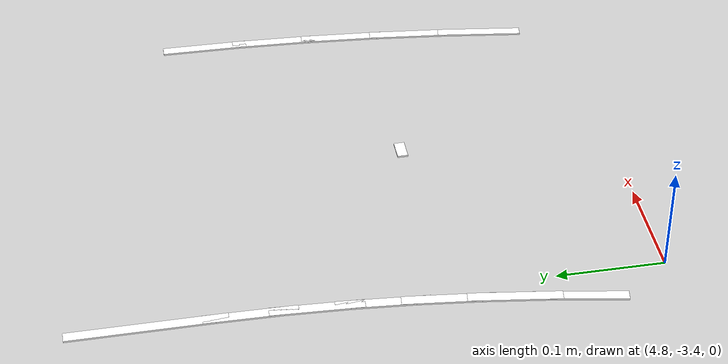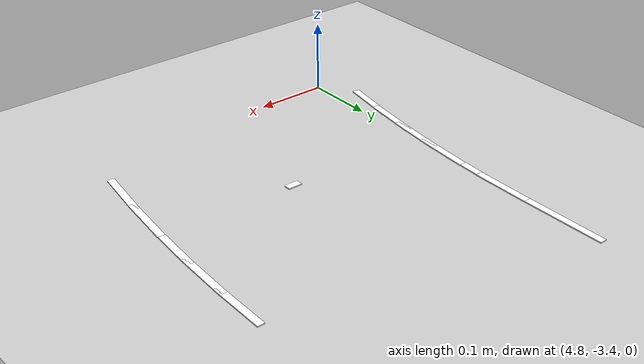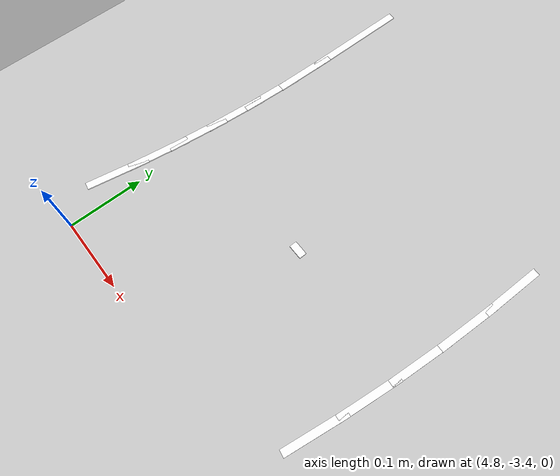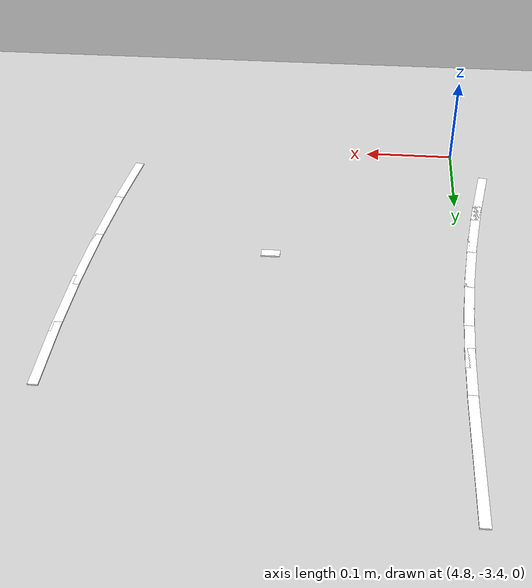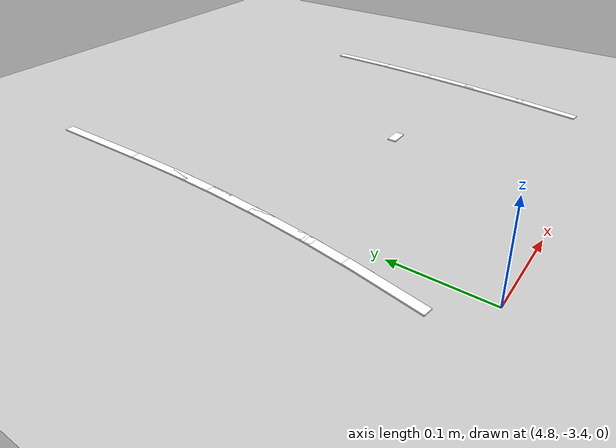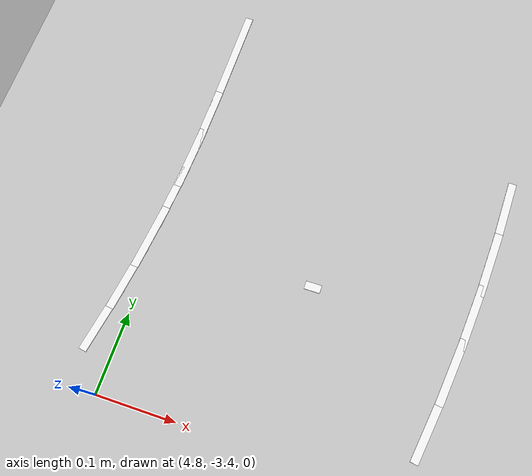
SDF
<sdf version="1.7">
 <world name="default">
  <model name="ground_plane">
   <static>1</static>
   <link name="link">
    <collision name="collision">
     <geometry><plane><normal>0 0 1</normal><size>100 100</size></plane></geometry>
     <surface>
      <contact><collide_bitmask>65535</collide_bitmask></contact>
      <friction><ode><mu>100</mu><mu2>50</mu2></ode></friction>
     </surface>
    </collision>
    <visual name="visual">
     <cast_shadows>0</cast_shadows>
     <geometry><plane><normal>0 0 1</normal><size>100 100</size></plane></geometry>
     <material>
      <script><uri>file://media/materials/scripts/gazebo.material</uri><name>Gazebo/Grey</name></script>
     </material>
    </visual>
   </link>
  </model>
  <model name="lane_line_left_93">
   <static>1</static>
   <link name="link">
    <pose>0 0 -0.004 0 -0 0</pose>
    <visual name="visual">
     <geometry><box><size>0.0841 0.01 0.01</size></box></geometry>
     <material><ambient>1 1 1 1</ambient><diffuse>1 1 1 1</diffuse></material>
    </visual>
    <collision name="collision"><geometry><box><size>0.0841 0.01 0.01</size></box></geometry></collision>
   </link>
   <pose>4.77184 -3.31568 0 0 -0 1.39448</pose>
  </model>
  <model name="lane_line_left_94">
   <static>1</static>
   <link name="link">
    <pose>0 0 -0.004 0 -0 0</pose>
    <visual name="visual">
     <geometry><box><size>0.0841 0.01 0.01</size></box></geometry>
     <material><ambient>1 1 1 1</ambient><diffuse>1 1 1 1</diffuse></material>
    </visual>
    <collision name="collision"><geometry><box><size>0.0841 0.01 0.01</size></box></geometry></collision>
   </link>
   <pose>4.78105 -3.25873 0 0 -0 1.42654</pose>
  </model>
  <model name="lane_line_right_94">
   <static>1</static>
   <link name="link">
    <pose>0 0 -0.004 0 -0 0</pose>
    <visual name="visual">
     <geometry><box><size>0.0841 0.01 0.01</size></box></geometry>
     <material><ambient>1 1 1 1</ambient><diffuse>1 1 1 1</diffuse></material>
    </visual>
    <collision name="collision"><geometry><box><size>0.0841 0.01 0.01</size></box></geometry></collision>
   </link>
   <pose>5.17689 -3.31623 0 0 -0 1.42654</pose>
  </model>
  <model name="lane_line_left_95">
   <static>1</static>
   <link name="link">
    <pose>0 0 -0.004 0 -0 0</pose>
    <visual name="visual">
     <geometry><box><size>0.0841 0.01 0.01</size></box></geometry>
     <material><ambient>1 1 1 1</ambient><diffuse>1 1 1 1</diffuse></material>
    </visual>
    <collision name="collision"><geometry><box><size>0.0841 0.01 0.01</size></box></geometry></collision>
   </link>
   <pose>4.78843 -3.20151 0 0 -0 1.4586</pose>
  </model>
  <model name="lane_line_right_95">
   <static>1</static>
   <link name="link">
    <pose>0 0 -0.004 0 -0 0</pose>
    <visual name="visual">
     <geometry><box><size>0.0841 0.01 0.01</size></box></geometry>
     <material><ambient>1 1 1 1</ambient><diffuse>1 1 1 1</diffuse></material>
    </visual>
    <collision name="collision"><geometry><box><size>0.0841 0.01 0.01</size></box></geometry></collision>
   </link>
   <pose>5.18591 -3.24629 0 0 -0 1.4586</pose>
  </model>
  <model name="lane_line_left_96">
   <static>1</static>
   <link name="link">
    <pose>0 0 -0.004 0 -0 0</pose>
    <visual name="visual">
     <geometry><box><size>0.0841 0.01 0.01</size></box></geometry>
     <material><ambient>1 1 1 1</ambient><diffuse>1 1 1 1</diffuse></material>
    </visual>
    <collision name="collision"><geometry><box><size>0.0841 0.01 0.01</size></box></geometry></collision>
   </link>
   <pose>4.79397 -3.14408 0 0 -0 1.49065</pose>
  </model>
  <model name="lane_line_right_96">
   <static>1</static>
   <link name="link">
    <pose>0 0 -0.004 0 -0 0</pose>
    <visual name="visual">
     <geometry><box><size>0.0841 0.01 0.01</size></box></geometry>
     <material><ambient>1 1 1 1</ambient><diffuse>1 1 1 1</diffuse></material>
    </visual>
    <collision name="collision"><geometry><box><size>0.0841 0.01 0.01</size></box></geometry></collision>
   </link>
   <pose>5.19268 -3.1761 0 0 -0 1.49065</pose>
  </model>
  <model name="lane_line_left_97">
   <static>1</static>
   <link name="link">
    <pose>0 0 -0.004 0 -0 0</pose>
    <visual name="visual">
     <geometry><box><size>0.0841 0.01 0.01</size></box></geometry>
     <material><ambient>1 1 1 1</ambient><diffuse>1 1 1 1</diffuse></material>
    </visual>
    <collision name="collision"><geometry><box><size>0.0841 0.01 0.01</size></box></geometry></collision>
   </link>
   <pose>4.79766 -3.08651 0 0 -0 1.52271</pose>
  </model>
  <model name="lane_line_right_97">
   <static>1</static>
   <link name="link">
    <pose>0 0 -0.004 0 -0 0</pose>
    <visual name="visual">
     <geometry><box><size>0.0841 0.01 0.01</size></box></geometry>
     <material><ambient>1 1 1 1</ambient><diffuse>1 1 1 1</diffuse></material>
    </visual>
    <collision name="collision"><geometry><box><size>0.0841 0.01 0.01</size></box></geometry></collision>
   </link>
   <pose>5.1972 -3.10574 0 0 -0 1.52271</pose>
  </model>
  <model name="lane_line_left_98">
   <static>1</static>
   <link name="link">
    <pose>0 0 -0.004 0 -0 0</pose>
    <visual name="visual">
     <geometry><box><size>0.0841 0.01 0.01</size></box></geometry>
     <material><ambient>1 1 1 1</ambient><diffuse>1 1 1 1</diffuse></material>
    </visual>
    <collision name="collision"><geometry><box><size>0.0841 0.01 0.01</size></box></geometry></collision>
   </link>
   <pose>4.79951 -3.02885 0 0 -0 1.55477</pose>
  </model>
  <model name="lane_line_right_98">
   <static>1</static>
   <link name="link">
    <pose>0 0 -0.004 0 -0 0</pose>
    <visual name="visual">
     <geometry><box><size>0.0841 0.01 0.01</size></box></geometry>
     <material><ambient>1 1 1 1</ambient><diffuse>1 1 1 1</diffuse></material>
    </visual>
    <collision name="collision"><geometry><box><size>0.0841 0.01 0.01</size></box></geometry></collision>
   </link>
   <pose>5.19946 -3.03526 0 0 -0 1.55477</pose>
  </model>
  <model name="lane_line_right_99">
   <static>1</static>
   <link name="link">
    <pose>0 0 -0.004 0 -0 0</pose>
    <visual name="visual">
     <geometry><box><size>0.02 0.01 0.01</size></box></geometry>
     <material><ambient>1 1 1 1</ambient><diffuse>1 1 1 1</diffuse></material>
    </visual>
    <collision name="collision"><geometry><box><size>0.02 0.01 0.01</size></box></geometry></collision>
   </link>
   <pose>5 -3.2 0 0 -0 0</pose>
  </model>
  <model name="lane_line_left_100">
   <static>1</static>
   <link name="link">
    <pose>0 0 -0.004 0 -0 0</pose>
    <visual name="visual">
     <geometry><box><size>0.1424 0.01 0.01</size></box></geometry>
     <material><ambient>1 1 1 1</ambient><diffuse>1 1 1 1</diffuse></material>
    </visual>
    <collision name="collision"><geometry><box><size>0.1424 0.01 0.01</size></box></geometry></collision>
   </link>
   <pose>4.8 -2.93878 0 0 -0 1.5708</pose>
  </model>
 </world>
</sdf>
